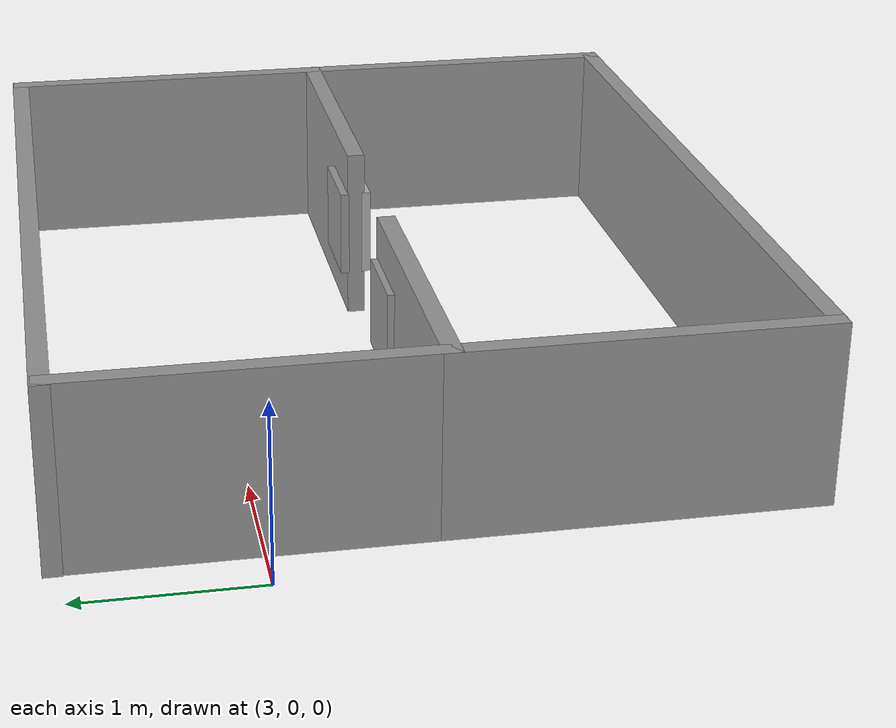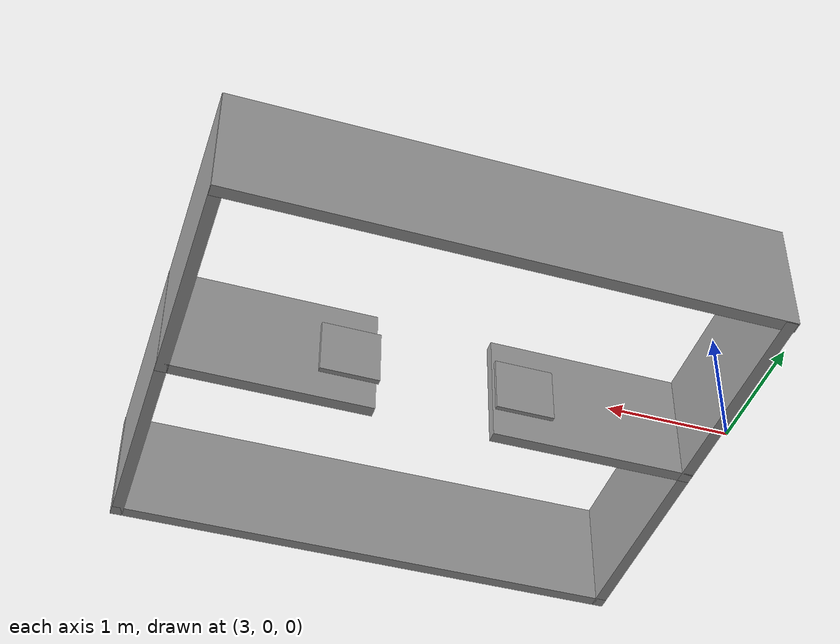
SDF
<?xml version='1.0'?>
<sdf version='1.7'>
  <model name='2_room'>
    <link name='link_0_clone_0'>
      <inertial>
        <mass>1</mass>
        <inertia>
          <ixx>0.166667</ixx>
          <ixy>0</ixy>
          <ixz>0</ixz>
          <iyy>0.166667</iyy>
          <iyz>0</iyz>
          <izz>0.166667</izz>
        </inertia>
        <pose>0 0 0 0 -0 0</pose>
      </inertial>
      <pose>2.941 -1.80696 0.726516 0 -0 0</pose>
      <gravity>1</gravity>
      <self_collide>0</self_collide>
      <kinematic>0</kinematic>
      <enable_wind>0</enable_wind>
      <visual name='visual'>
        <pose>0 0 0 0 -0 0</pose>
        <geometry>
          <box>
            <size>0.1 2 1</size>
          </box>
        </geometry>
        <material>
          <lighting>1</lighting>
          <script>
            <uri>file://media/materials/scripts/gazebo.material</uri>
            <name>Gazebo/Grey</name>
          </script>
          <shader type='pixel'>
            <normal_map>__default__</normal_map>
          </shader>
          <ambient>0.3 0.3 0.3 1</ambient>
          <diffuse>0.7 0.7 0.7 1</diffuse>
          <specular>0.01 0.01 0.01 1</specular>
          <emissive>0 0 0 1</emissive>
        </material>
        <transparency>0</transparency>
        <cast_shadows>1</cast_shadows>
      </visual>
      <collision name='collision'>
        <laser_retro>0</laser_retro>
        <max_contacts>10</max_contacts>
        <pose>0 0 0 0 -0 0</pose>
        <geometry>
          <box>
            <size>0.1 2 1</size>
          </box>
        </geometry>
        <surface>
          <friction>
            <ode>
              <mu>1</mu>
              <mu2>1</mu2>
              <fdir1>0 0 0</fdir1>
              <slip1>0</slip1>
              <slip2>0</slip2>
            </ode>
            <torsional>
              <coefficient>1</coefficient>
              <patch_radius>0</patch_radius>
              <surface_radius>0</surface_radius>
              <use_patch_radius>1</use_patch_radius>
              <ode>
                <slip>0</slip>
              </ode>
            </torsional>
          </friction>
          <bounce>
            <restitution_coefficient>0</restitution_coefficient>
            <threshold>1e+06</threshold>
          </bounce>
          <contact>
            <collide_without_contact>0</collide_without_contact>
            <collide_without_contact_bitmask>1</collide_without_contact_bitmask>
            <collide_bitmask>1</collide_bitmask>
            <ode>
              <soft_cfm>0</soft_cfm>
              <soft_erp>0.2</soft_erp>
              <kp>1e+13</kp>
              <kd>1</kd>
              <max_vel>0.01</max_vel>
              <min_depth>0</min_depth>
            </ode>
            <bullet>
              <split_impulse>1</split_impulse>
              <split_impulse_penetration_threshold>-0.01</split_impulse_penetration_threshold>
              <soft_cfm>0</soft_cfm>
              <soft_erp>0.2</soft_erp>
              <kp>1e+13</kp>
              <kd>1</kd>
            </bullet>
          </contact>
        </surface>
      </collision>
    </link>
    <link name='link_0'>
      <inertial>
        <mass>0.0165049</mass>
        <inertia>
          <ixx>0.00034729</ixx>
          <ixy>0</ixy>
          <ixz>0</ixz>
          <iyy>0.00068771</iyy>
          <iyz>0</iyz>
          <izz>0.00034729</izz>
        </inertia>
        <pose>0 0 0 0 -0 0</pose>
      </inertial>
      <pose>4.36868 -0.924977 0.741184 0 -0 0</pose>
      <gravity>1</gravity>
      <self_collide>0</self_collide>
      <kinematic>0</kinematic>
      <enable_wind>0</enable_wind>
      <visual name='visual'>
        <pose>0 0 0 0 -0 0</pose>
        <geometry>
          <box>
            <size>0.499999 0.05 0.5</size>
          </box>
        </geometry>
        <material>
          <lighting>1</lighting>
          <script>
            <uri>file://media/materials/scripts/gazebo.material</uri>
            <name>Gazebo/Grey</name>
          </script>
          <shader type='pixel'>
            <normal_map>__default__</normal_map>
          </shader>
          <ambient>0.3 0.3 0.3 1</ambient>
          <diffuse>0.7 0.7 0.7 1</diffuse>
          <specular>0.01 0.01 0.01 1</specular>
          <emissive>0 0 0 1</emissive>
        </material>
        <transparency>0</transparency>
        <cast_shadows>1</cast_shadows>
      </visual>
      <collision name='collision'>
        <laser_retro>0</laser_retro>
        <max_contacts>10</max_contacts>
        <pose>0 0 0 0 -0 0</pose>
        <geometry>
          <box>
            <size>0.499999 0.05 0.5</size>
          </box>
        </geometry>
        <surface>
          <friction>
            <ode>
              <mu>1</mu>
              <mu2>1</mu2>
              <fdir1>0 0 0</fdir1>
              <slip1>0</slip1>
              <slip2>0</slip2>
            </ode>
            <torsional>
              <coefficient>1</coefficient>
              <patch_radius>0</patch_radius>
              <surface_radius>0</surface_radius>
              <use_patch_radius>1</use_patch_radius>
              <ode>
                <slip>0</slip>
              </ode>
            </torsional>
          </friction>
          <bounce>
            <restitution_coefficient>0</restitution_coefficient>
            <threshold>1e+06</threshold>
          </bounce>
          <contact>
            <collide_without_contact>0</collide_without_contact>
            <collide_without_contact_bitmask>1</collide_without_contact_bitmask>
            <collide_bitmask>1</collide_bitmask>
            <ode>
              <soft_cfm>0</soft_cfm>
              <soft_erp>0.2</soft_erp>
              <kp>1e+13</kp>
              <kd>1</kd>
              <max_vel>0.01</max_vel>
              <min_depth>0</min_depth>
            </ode>
            <bullet>
              <split_impulse>1</split_impulse>
              <split_impulse_penetration_threshold>-0.01</split_impulse_penetration_threshold>
              <soft_cfm>0</soft_cfm>
              <soft_erp>0.2</soft_erp>
              <kp>1e+13</kp>
              <kd>1</kd>
            </bullet>
          </contact>
        </surface>
      </collision>
    </link>
    <link name='link_0_clone'>
      <inertial>
        <mass>0.0165049</mass>
        <inertia>
          <ixx>0.00034729</ixx>
          <ixy>0</ixy>
          <ixz>0</ixz>
          <iyy>0.00068771</iyy>
          <iyz>0</iyz>
          <izz>0.00034729</izz>
        </inertia>
        <pose>0 0 0 0 -0 0</pose>
      </inertial>
      <pose>5.87513 -0.91973 0.741184 0 -0 0</pose>
      <gravity>1</gravity>
      <self_collide>0</self_collide>
      <kinematic>0</kinematic>
      <enable_wind>0</enable_wind>
      <visual name='visual'>
        <pose>0 0 0 0 -0 0</pose>
        <geometry>
          <box>
            <size>0.499999 0.05 0.5</size>
          </box>
        </geometry>
        <material>
          <lighting>1</lighting>
          <script>
            <uri>model://2_room/materials/scripts</uri>
            <uri>model://2_room/materials/textures</uri>
            <name>tag16_05_1/Diffuse</name>
          </script>
          <shader type='pixel'>
            <normal_map>__default__</normal_map>
          </shader>
          <ambient>0.3 0.3 0.3 1</ambient>
          <diffuse>0.7 0.7 0.7 1</diffuse>
          <specular>0.01 0.01 0.01 1</specular>
          <emissive>0 0 0 1</emissive>
        </material>
        <transparency>0</transparency>
        <cast_shadows>1</cast_shadows>
      </visual>
      <collision name='collision'>
        <laser_retro>0</laser_retro>
        <max_contacts>10</max_contacts>
        <pose>0 0 0 0 -0 0</pose>
        <geometry>
          <box>
            <size>0.499999 0.05 0.5</size>
          </box>
        </geometry>
        <surface>
          <friction>
            <ode>
              <mu>1</mu>
              <mu2>1</mu2>
              <fdir1>0 0 0</fdir1>
              <slip1>0</slip1>
              <slip2>0</slip2>
            </ode>
            <torsional>
              <coefficient>1</coefficient>
              <patch_radius>0</patch_radius>
              <surface_radius>0</surface_radius>
              <use_patch_radius>1</use_patch_radius>
              <ode>
                <slip>0</slip>
              </ode>
            </torsional>
          </friction>
          <bounce>
            <restitution_coefficient>0</restitution_coefficient>
            <threshold>1e+06</threshold>
          </bounce>
          <contact>
            <collide_without_contact>0</collide_without_contact>
            <collide_without_contact_bitmask>1</collide_without_contact_bitmask>
            <collide_bitmask>1</collide_bitmask>
            <ode>
              <soft_cfm>0</soft_cfm>
              <soft_erp>0.2</soft_erp>
              <kp>1e+13</kp>
              <kd>1</kd>
              <max_vel>0.01</max_vel>
              <min_depth>0</min_depth>
            </ode>
            <bullet>
              <split_impulse>1</split_impulse>
              <split_impulse_penetration_threshold>-0.01</split_impulse_penetration_threshold>
              <soft_cfm>0</soft_cfm>
              <soft_erp>0.2</soft_erp>
              <kp>1e+13</kp>
              <kd>1</kd>
            </bullet>
          </contact>
        </surface>
      </collision>
    </link>
    <link name='link_0_clone_0_clone'>
      <inertial>
        <mass>1</mass>
        <inertia>
          <ixx>0.166667</ixx>
          <ixy>0</ixy>
          <ixz>0</ixz>
          <iyy>0.166667</iyy>
          <iyz>0</iyz>
          <izz>0.166667</izz>
        </inertia>
        <pose>0 0 0 0 -0 0</pose>
      </inertial>
      <pose>2.94115 0.091646 0.726516 0 -0 0</pose>
      <gravity>1</gravity>
      <self_collide>0</self_collide>
      <kinematic>0</kinematic>
      <enable_wind>0</enable_wind>
      <visual name='visual'>
        <pose>0 0 0 0 -0 0</pose>
        <geometry>
          <box>
            <size>0.1 2 1</size>
          </box>
        </geometry>
        <material>
          <lighting>1</lighting>
          <script>
            <uri>file://media/materials/scripts/gazebo.material</uri>
            <name>Gazebo/Grey</name>
          </script>
          <shader type='pixel'>
            <normal_map>__default__</normal_map>
          </shader>
          <ambient>0.3 0.3 0.3 1</ambient>
          <diffuse>0.7 0.7 0.7 1</diffuse>
          <specular>0.01 0.01 0.01 1</specular>
          <emissive>0 0 0 1</emissive>
        </material>
        <transparency>0</transparency>
        <cast_shadows>1</cast_shadows>
      </visual>
      <collision name='collision'>
        <laser_retro>0</laser_retro>
        <max_contacts>10</max_contacts>
        <pose>0 0 0 0 -0 0</pose>
        <geometry>
          <box>
            <size>0.1 2 1</size>
          </box>
        </geometry>
        <surface>
          <friction>
            <ode>
              <mu>1</mu>
              <mu2>1</mu2>
              <fdir1>0 0 0</fdir1>
              <slip1>0</slip1>
              <slip2>0</slip2>
            </ode>
            <torsional>
              <coefficient>1</coefficient>
              <patch_radius>0</patch_radius>
              <surface_radius>0</surface_radius>
              <use_patch_radius>1</use_patch_radius>
              <ode>
                <slip>0</slip>
              </ode>
            </torsional>
          </friction>
          <bounce>
            <restitution_coefficient>0</restitution_coefficient>
            <threshold>1e+06</threshold>
          </bounce>
          <contact>
            <collide_without_contact>0</collide_without_contact>
            <collide_without_contact_bitmask>1</collide_without_contact_bitmask>
            <collide_bitmask>1</collide_bitmask>
            <ode>
              <soft_cfm>0</soft_cfm>
              <soft_erp>0.2</soft_erp>
              <kp>1e+13</kp>
              <kd>1</kd>
              <max_vel>0.01</max_vel>
              <min_depth>0</min_depth>
            </ode>
            <bullet>
              <split_impulse>1</split_impulse>
              <split_impulse_penetration_threshold>-0.01</split_impulse_penetration_threshold>
              <soft_cfm>0</soft_cfm>
              <soft_erp>0.2</soft_erp>
              <kp>1e+13</kp>
              <kd>1</kd>
            </bullet>
          </contact>
        </surface>
      </collision>
    </link>
    <link name='link_0_clone_0_clone_1_clone'>
      <inertial>
        <mass>1</mass>
        <inertia>
          <ixx>0.166667</ixx>
          <ixy>0</ixy>
          <ixz>0</ixz>
          <iyy>0.166667</iyy>
          <iyz>0</iyz>
          <izz>0.166667</izz>
        </inertia>
        <pose>0 0 0 0 -0 0</pose>
      </inertial>
      <pose>3.76893 -0.857187 0.726516 0 0 -1.5708</pose>
      <gravity>1</gravity>
      <self_collide>0</self_collide>
      <kinematic>0</kinematic>
      <enable_wind>0</enable_wind>
      <visual name='visual'>
        <pose>0 0 0 0 -0 0</pose>
        <geometry>
          <box>
            <size>0.1 1.75 1</size>
          </box>
        </geometry>
        <material>
          <lighting>1</lighting>
          <script>
            <uri>file://media/materials/scripts/gazebo.material</uri>
            <name>Gazebo/Grey</name>
          </script>
          <shader type='pixel'>
            <normal_map>__default__</normal_map>
          </shader>
          <ambient>0.3 0.3 0.3 1</ambient>
          <diffuse>0.7 0.7 0.7 1</diffuse>
          <specular>0.01 0.01 0.01 1</specular>
          <emissive>0 0 0 1</emissive>
        </material>
        <transparency>0</transparency>
        <cast_shadows>1</cast_shadows>
      </visual>
      <collision name='collision'>
        <laser_retro>0</laser_retro>
        <max_contacts>10</max_contacts>
        <pose>0 0 0 0 -0 0</pose>
        <geometry>
          <box>
            <size>0.1 1.75 1</size>
          </box>
        </geometry>
        <surface>
          <friction>
            <ode>
              <mu>1</mu>
              <mu2>1</mu2>
              <fdir1>0 0 0</fdir1>
              <slip1>0</slip1>
              <slip2>0</slip2>
            </ode>
            <torsional>
              <coefficient>1</coefficient>
              <patch_radius>0</patch_radius>
              <surface_radius>0</surface_radius>
              <use_patch_radius>1</use_patch_radius>
              <ode>
                <slip>0</slip>
              </ode>
            </torsional>
          </friction>
          <bounce>
            <restitution_coefficient>0</restitution_coefficient>
            <threshold>1e+06</threshold>
          </bounce>
          <contact>
            <collide_without_contact>0</collide_without_contact>
            <collide_without_contact_bitmask>1</collide_without_contact_bitmask>
            <collide_bitmask>1</collide_bitmask>
            <ode>
              <soft_cfm>0</soft_cfm>
              <soft_erp>0.2</soft_erp>
              <kp>1e+13</kp>
              <kd>1</kd>
              <max_vel>0.01</max_vel>
              <min_depth>0</min_depth>
            </ode>
            <bullet>
              <split_impulse>1</split_impulse>
              <split_impulse_penetration_threshold>-0.01</split_impulse_penetration_threshold>
              <soft_cfm>0</soft_cfm>
              <soft_erp>0.2</soft_erp>
              <kp>1e+13</kp>
              <kd>1</kd>
            </bullet>
          </contact>
        </surface>
      </collision>
    </link>
    <link name='link_0_clone_0_clone_1_clone_clone'>
      <inertial>
        <mass>1</mass>
        <inertia>
          <ixx>0.166667</ixx>
          <ixy>0</ixy>
          <ixz>0</ixz>
          <iyy>0.166667</iyy>
          <iyz>0</iyz>
          <izz>0.166667</izz>
        </inertia>
        <pose>0 0 0 0 -0 0</pose>
      </inertial>
      <pose>5.14109 -2.75738 0.726516 0 0 -1.5708</pose>
      <gravity>1</gravity>
      <self_collide>0</self_collide>
      <kinematic>0</kinematic>
      <enable_wind>0</enable_wind>
      <visual name='visual'>
        <pose>0 0 0 0 -0 0</pose>
        <geometry>
          <box>
            <size>0.1 4.5 1</size>
          </box>
        </geometry>
        <material>
          <lighting>1</lighting>
          <script>
            <uri>file://media/materials/scripts/gazebo.material</uri>
            <name>Gazebo/Grey</name>
          </script>
          <shader type='pixel'>
            <normal_map>__default__</normal_map>
          </shader>
          <ambient>0.3 0.3 0.3 1</ambient>
          <diffuse>0.7 0.7 0.7 1</diffuse>
          <specular>0.01 0.01 0.01 1</specular>
          <emissive>0 0 0 1</emissive>
        </material>
        <transparency>0</transparency>
        <cast_shadows>1</cast_shadows>
      </visual>
      <collision name='collision'>
        <laser_retro>0</laser_retro>
        <max_contacts>10</max_contacts>
        <pose>0 0 0 0 -0 0</pose>
        <geometry>
          <box>
            <size>0.1 4.5 1</size>
          </box>
        </geometry>
        <surface>
          <friction>
            <ode>
              <mu>1</mu>
              <mu2>1</mu2>
              <fdir1>0 0 0</fdir1>
              <slip1>0</slip1>
              <slip2>0</slip2>
            </ode>
            <torsional>
              <coefficient>1</coefficient>
              <patch_radius>0</patch_radius>
              <surface_radius>0</surface_radius>
              <use_patch_radius>1</use_patch_radius>
              <ode>
                <slip>0</slip>
              </ode>
            </torsional>
          </friction>
          <bounce>
            <restitution_coefficient>0</restitution_coefficient>
            <threshold>1e+06</threshold>
          </bounce>
          <contact>
            <collide_without_contact>0</collide_without_contact>
            <collide_without_contact_bitmask>1</collide_without_contact_bitmask>
            <collide_bitmask>1</collide_bitmask>
            <ode>
              <soft_cfm>0</soft_cfm>
              <soft_erp>0.2</soft_erp>
              <kp>1e+13</kp>
              <kd>1</kd>
              <max_vel>0.01</max_vel>
              <min_depth>0</min_depth>
            </ode>
            <bullet>
              <split_impulse>1</split_impulse>
              <split_impulse_penetration_threshold>-0.01</split_impulse_penetration_threshold>
              <soft_cfm>0</soft_cfm>
              <soft_erp>0.2</soft_erp>
              <kp>1e+13</kp>
              <kd>1</kd>
            </bullet>
          </contact>
        </surface>
      </collision>
    </link>
    <link name='link_0_clone_0_clone_1_clone_clone_clone'>
      <inertial>
        <mass>1</mass>
        <inertia>
          <ixx>0.166667</ixx>
          <ixy>0</ixy>
          <ixz>0</ixz>
          <iyy>0.166667</iyy>
          <iyz>0</iyz>
          <izz>0.166667</izz>
        </inertia>
        <pose>0 0 0 0 -0 0</pose>
      </inertial>
      <pose>5.13286 1.04959 0.726516 0 0 -1.5708</pose>
      <gravity>1</gravity>
      <self_collide>0</self_collide>
      <kinematic>0</kinematic>
      <enable_wind>0</enable_wind>
      <visual name='visual'>
        <pose>0 0 0 0 -0 0</pose>
        <geometry>
          <box>
            <size>0.1 4.5 1</size>
          </box>
        </geometry>
        <material>
          <lighting>1</lighting>
          <script>
            <uri>file://media/materials/scripts/gazebo.material</uri>
            <name>Gazebo/Grey</name>
          </script>
          <shader type='pixel'>
            <normal_map>__default__</normal_map>
          </shader>
          <ambient>0.3 0.3 0.3 1</ambient>
          <diffuse>0.7 0.7 0.7 1</diffuse>
          <specular>0.01 0.01 0.01 1</specular>
          <emissive>0 0 0 1</emissive>
        </material>
        <transparency>0</transparency>
        <cast_shadows>1</cast_shadows>
      </visual>
      <collision name='collision'>
        <laser_retro>0</laser_retro>
        <max_contacts>10</max_contacts>
        <pose>0 0 0 0 -0 0</pose>
        <geometry>
          <box>
            <size>0.1 4.5 1</size>
          </box>
        </geometry>
        <surface>
          <friction>
            <ode>
              <mu>1</mu>
              <mu2>1</mu2>
              <fdir1>0 0 0</fdir1>
              <slip1>0</slip1>
              <slip2>0</slip2>
            </ode>
            <torsional>
              <coefficient>1</coefficient>
              <patch_radius>0</patch_radius>
              <surface_radius>0</surface_radius>
              <use_patch_radius>1</use_patch_radius>
              <ode>
                <slip>0</slip>
              </ode>
            </torsional>
          </friction>
          <bounce>
            <restitution_coefficient>0</restitution_coefficient>
            <threshold>1e+06</threshold>
          </bounce>
          <contact>
            <collide_without_contact>0</collide_without_contact>
            <collide_without_contact_bitmask>1</collide_without_contact_bitmask>
            <collide_bitmask>1</collide_bitmask>
            <ode>
              <soft_cfm>0</soft_cfm>
              <soft_erp>0.2</soft_erp>
              <kp>1e+13</kp>
              <kd>1</kd>
              <max_vel>0.01</max_vel>
              <min_depth>0</min_depth>
            </ode>
            <bullet>
              <split_impulse>1</split_impulse>
              <split_impulse_penetration_threshold>-0.01</split_impulse_penetration_threshold>
              <soft_cfm>0</soft_cfm>
              <soft_erp>0.2</soft_erp>
              <kp>1e+13</kp>
              <kd>1</kd>
            </bullet>
          </contact>
        </surface>
      </collision>
    </link>
    <link name='link_0_clone_0_clone_clone'>
      <inertial>
        <mass>1</mass>
        <inertia>
          <ixx>0.166667</ixx>
          <ixy>0</ixy>
          <ixz>0</ixz>
          <iyy>0.166667</iyy>
          <iyz>0</iyz>
          <izz>0.166667</izz>
        </inertia>
        <pose>0 0 0 0 -0 0</pose>
      </inertial>
      <pose>7.33895 -1.80838 0.726516 0 -0 0</pose>
      <gravity>1</gravity>
      <self_collide>0</self_collide>
      <kinematic>0</kinematic>
      <enable_wind>0</enable_wind>
      <visual name='visual'>
        <pose>0 0 0 0 -0 0</pose>
        <geometry>
          <box>
            <size>0.1 2 1</size>
          </box>
        </geometry>
        <material>
          <lighting>1</lighting>
          <script>
            <uri>file://media/materials/scripts/gazebo.material</uri>
            <name>Gazebo/Grey</name>
          </script>
          <shader type='pixel'>
            <normal_map>__default__</normal_map>
          </shader>
          <ambient>0.3 0.3 0.3 1</ambient>
          <diffuse>0.7 0.7 0.7 1</diffuse>
          <specular>0.01 0.01 0.01 1</specular>
          <emissive>0 0 0 1</emissive>
        </material>
        <transparency>0</transparency>
        <cast_shadows>1</cast_shadows>
      </visual>
      <collision name='collision'>
        <laser_retro>0</laser_retro>
        <max_contacts>10</max_contacts>
        <pose>0 0 0 0 -0 0</pose>
        <geometry>
          <box>
            <size>0.1 2 1</size>
          </box>
        </geometry>
        <surface>
          <friction>
            <ode>
              <mu>1</mu>
              <mu2>1</mu2>
              <fdir1>0 0 0</fdir1>
              <slip1>0</slip1>
              <slip2>0</slip2>
            </ode>
            <torsional>
              <coefficient>1</coefficient>
              <patch_radius>0</patch_radius>
              <surface_radius>0</surface_radius>
              <use_patch_radius>1</use_patch_radius>
              <ode>
                <slip>0</slip>
              </ode>
            </torsional>
          </friction>
          <bounce>
            <restitution_coefficient>0</restitution_coefficient>
            <threshold>1e+06</threshold>
          </bounce>
          <contact>
            <collide_without_contact>0</collide_without_contact>
            <collide_without_contact_bitmask>1</collide_without_contact_bitmask>
            <collide_bitmask>1</collide_bitmask>
            <ode>
              <soft_cfm>0</soft_cfm>
              <soft_erp>0.2</soft_erp>
              <kp>1e+13</kp>
              <kd>1</kd>
              <max_vel>0.01</max_vel>
              <min_depth>0</min_depth>
            </ode>
            <bullet>
              <split_impulse>1</split_impulse>
              <split_impulse_penetration_threshold>-0.01</split_impulse_penetration_threshold>
              <soft_cfm>0</soft_cfm>
              <soft_erp>0.2</soft_erp>
              <kp>1e+13</kp>
              <kd>1</kd>
            </bullet>
          </contact>
        </surface>
      </collision>
    </link>
    <link name='link_0_clone_0_clone_clone_clone'>
      <inertial>
        <mass>1</mass>
        <inertia>
          <ixx>0.166667</ixx>
          <ixy>0</ixy>
          <ixz>0</ixz>
          <iyy>0.166667</iyy>
          <iyz>0</iyz>
          <izz>0.166667</izz>
        </inertia>
        <pose>0 0 0 0 -0 0</pose>
      </inertial>
      <pose>7.33662 0.093628 0.726516 0 -0 0</pose>
      <gravity>1</gravity>
      <self_collide>0</self_collide>
      <kinematic>0</kinematic>
      <enable_wind>0</enable_wind>
      <visual name='visual'>
        <pose>0 0 0 0 -0 0</pose>
        <geometry>
          <box>
            <size>0.1 2 1</size>
          </box>
        </geometry>
        <material>
          <lighting>1</lighting>
          <script>
            <uri>file://media/materials/scripts/gazebo.material</uri>
            <name>Gazebo/Grey</name>
          </script>
          <shader type='pixel'>
            <normal_map>__default__</normal_map>
          </shader>
          <ambient>0.3 0.3 0.3 1</ambient>
          <diffuse>0.7 0.7 0.7 1</diffuse>
          <specular>0.01 0.01 0.01 1</specular>
          <emissive>0 0 0 1</emissive>
        </material>
        <transparency>0</transparency>
        <cast_shadows>1</cast_shadows>
      </visual>
      <collision name='collision'>
        <laser_retro>0</laser_retro>
        <max_contacts>10</max_contacts>
        <pose>0 0 0 0 -0 0</pose>
        <geometry>
          <box>
            <size>0.1 2 1</size>
          </box>
        </geometry>
        <surface>
          <friction>
            <ode>
              <mu>1</mu>
              <mu2>1</mu2>
              <fdir1>0 0 0</fdir1>
              <slip1>0</slip1>
              <slip2>0</slip2>
            </ode>
            <torsional>
              <coefficient>1</coefficient>
              <patch_radius>0</patch_radius>
              <surface_radius>0</surface_radius>
              <use_patch_radius>1</use_patch_radius>
              <ode>
                <slip>0</slip>
              </ode>
            </torsional>
          </friction>
          <bounce>
            <restitution_coefficient>0</restitution_coefficient>
            <threshold>1e+06</threshold>
          </bounce>
          <contact>
            <collide_without_contact>0</collide_without_contact>
            <collide_without_contact_bitmask>1</collide_without_contact_bitmask>
            <collide_bitmask>1</collide_bitmask>
            <ode>
              <soft_cfm>0</soft_cfm>
              <soft_erp>0.2</soft_erp>
              <kp>1e+13</kp>
              <kd>1</kd>
              <max_vel>0.01</max_vel>
              <min_depth>0</min_depth>
            </ode>
            <bullet>
              <split_impulse>1</split_impulse>
              <split_impulse_penetration_threshold>-0.01</split_impulse_penetration_threshold>
              <soft_cfm>0</soft_cfm>
              <soft_erp>0.2</soft_erp>
              <kp>1e+13</kp>
              <kd>1</kd>
            </bullet>
          </contact>
        </surface>
      </collision>
    </link>
    <link name='link_0_clone_0_clone_clone_clone_0'>
      <inertial>
        <mass>1</mass>
        <inertia>
          <ixx>0.166667</ixx>
          <ixy>0</ixy>
          <ixz>0</ixz>
          <iyy>0.166667</iyy>
          <iyz>0</iyz>
          <izz>0.166667</izz>
        </inertia>
        <pose>0 0 0 0 -0 0</pose>
      </inertial>
      <pose>6.50976 -0.859788 0.726516 0 0 -1.5708</pose>
      <gravity>1</gravity>
      <self_collide>0</self_collide>
      <kinematic>0</kinematic>
      <enable_wind>0</enable_wind>
      <visual name='visual'>
        <pose>0 0 0 0 -0 0</pose>
        <geometry>
          <box>
            <size>0.1 1.75 1</size>
          </box>
        </geometry>
        <material>
          <lighting>1</lighting>
          <script>
            <uri>file://media/materials/scripts/gazebo.material</uri>
            <name>Gazebo/Grey</name>
          </script>
          <shader type='pixel'>
            <normal_map>__default__</normal_map>
          </shader>
          <ambient>0.3 0.3 0.3 1</ambient>
          <diffuse>0.7 0.7 0.7 1</diffuse>
          <specular>0.01 0.01 0.01 1</specular>
          <emissive>0 0 0 1</emissive>
        </material>
        <transparency>0</transparency>
        <cast_shadows>1</cast_shadows>
      </visual>
      <collision name='collision'>
        <laser_retro>0</laser_retro>
        <max_contacts>10</max_contacts>
        <pose>0 0 0 0 -0 0</pose>
        <geometry>
          <box>
            <size>0.1 1.75 1</size>
          </box>
        </geometry>
        <surface>
          <friction>
            <ode>
              <mu>1</mu>
              <mu2>1</mu2>
              <fdir1>0 0 0</fdir1>
              <slip1>0</slip1>
              <slip2>0</slip2>
            </ode>
            <torsional>
              <coefficient>1</coefficient>
              <patch_radius>0</patch_radius>
              <surface_radius>0</surface_radius>
              <use_patch_radius>1</use_patch_radius>
              <ode>
                <slip>0</slip>
              </ode>
            </torsional>
          </friction>
          <bounce>
            <restitution_coefficient>0</restitution_coefficient>
            <threshold>1e+06</threshold>
          </bounce>
          <contact>
            <collide_without_contact>0</collide_without_contact>
            <collide_without_contact_bitmask>1</collide_without_contact_bitmask>
            <collide_bitmask>1</collide_bitmask>
            <ode>
              <soft_cfm>0</soft_cfm>
              <soft_erp>0.2</soft_erp>
              <kp>1e+13</kp>
              <kd>1</kd>
              <max_vel>0.01</max_vel>
              <min_depth>0</min_depth>
            </ode>
            <bullet>
              <split_impulse>1</split_impulse>
              <split_impulse_penetration_threshold>-0.01</split_impulse_penetration_threshold>
              <soft_cfm>0</soft_cfm>
              <soft_erp>0.2</soft_erp>
              <kp>1e+13</kp>
              <kd>1</kd>
            </bullet>
          </contact>
        </surface>
      </collision>
    </link>
    <link name='link_0_clone_1'>
      <inertial>
        <mass>0.0165049</mass>
        <inertia>
          <ixx>0.00034729</ixx>
          <ixy>0</ixy>
          <ixz>0</ixz>
          <iyy>0.00068771</iyy>
          <iyz>0</iyz>
          <izz>0.00034729</izz>
        </inertia>
        <pose>0 0 0 0 -0 0</pose>
      </inertial>
      <pose>5.86373 -0.790889 0.741184 0 -0 0</pose>
      <gravity>1</gravity>
      <self_collide>0</self_collide>
      <kinematic>0</kinematic>
      <enable_wind>0</enable_wind>
      <visual name='visual'>
        <pose>0 0 0 0 -0 0</pose>
        <geometry>
          <box>
            <size>0.499999 0.05 0.5</size>
          </box>
        </geometry>
        <material>
          <lighting>1</lighting>
          <script>
            <uri>file://media/materials/scripts/gazebo.material</uri>
            <name>Gazebo/Grey</name>
          </script>
          <shader type='pixel'>
            <normal_map>__default__</normal_map>
          </shader>
          <ambient>0.3 0.3 0.3 1</ambient>
          <diffuse>0.7 0.7 0.7 1</diffuse>
          <specular>0.01 0.01 0.01 1</specular>
          <emissive>0 0 0 1</emissive>
        </material>
        <transparency>0</transparency>
        <cast_shadows>1</cast_shadows>
      </visual>
      <collision name='collision'>
        <laser_retro>0</laser_retro>
        <max_contacts>10</max_contacts>
        <pose>0 0 0 0 -0 0</pose>
        <geometry>
          <box>
            <size>0.499999 0.05 0.5</size>
          </box>
        </geometry>
        <surface>
          <friction>
            <ode>
              <mu>1</mu>
              <mu2>1</mu2>
              <fdir1>0 0 0</fdir1>
              <slip1>0</slip1>
              <slip2>0</slip2>
            </ode>
            <torsional>
              <coefficient>1</coefficient>
              <patch_radius>0</patch_radius>
              <surface_radius>0</surface_radius>
              <use_patch_radius>1</use_patch_radius>
              <ode>
                <slip>0</slip>
              </ode>
            </torsional>
          </friction>
          <bounce>
            <restitution_coefficient>0</restitution_coefficient>
            <threshold>1e+06</threshold>
          </bounce>
          <contact>
            <collide_without_contact>0</collide_without_contact>
            <collide_without_contact_bitmask>1</collide_without_contact_bitmask>
            <collide_bitmask>1</collide_bitmask>
            <ode>
              <soft_cfm>0</soft_cfm>
              <soft_erp>0.2</soft_erp>
              <kp>1e+13</kp>
              <kd>1</kd>
              <max_vel>0.01</max_vel>
              <min_depth>0</min_depth>
            </ode>
            <bullet>
              <split_impulse>1</split_impulse>
              <split_impulse_penetration_threshold>-0.01</split_impulse_penetration_threshold>
              <soft_cfm>0</soft_cfm>
              <soft_erp>0.2</soft_erp>
              <kp>1e+13</kp>
              <kd>1</kd>
            </bullet>
          </contact>
        </surface>
      </collision>
    </link>
    <link name='link_0_clone_2'>
      <inertial>
        <mass>0.0165049</mass>
        <inertia>
          <ixx>0.00034729</ixx>
          <ixy>0</ixy>
          <ixz>0</ixz>
          <iyy>0.00068771</iyy>
          <iyz>0</iyz>
          <izz>0.00034729</izz>
        </inertia>
        <pose>0 0 0 0 -0 0</pose>
      </inertial>
      <pose>4.37201 -0.794616 0.741184 0 -0 0</pose>
      <gravity>1</gravity>
      <self_collide>0</self_collide>
      <kinematic>0</kinematic>
      <enable_wind>0</enable_wind>
      <visual name='visual'>
        <pose>0 0 0 0 -0 0</pose>
        <geometry>
          <box>
            <size>0.499999 0.05 0.5</size>
          </box>
        </geometry>
        <material>
          <lighting>1</lighting>
          <script>
            <uri>file://media/materials/scripts/gazebo.material</uri>
            <name>Gazebo/Grey</name>
          </script>
          <shader type='pixel'>
            <normal_map>__default__</normal_map>
          </shader>
          <ambient>0.3 0.3 0.3 1</ambient>
          <diffuse>0.7 0.7 0.7 1</diffuse>
          <specular>0.01 0.01 0.01 1</specular>
          <emissive>0 0 0 1</emissive>
        </material>
        <transparency>0</transparency>
        <cast_shadows>1</cast_shadows>
      </visual>
      <collision name='collision'>
        <laser_retro>0</laser_retro>
        <max_contacts>10</max_contacts>
        <pose>0 0 0 0 -0 0</pose>
        <geometry>
          <box>
            <size>0.499999 0.05 0.5</size>
          </box>
        </geometry>
        <surface>
          <friction>
            <ode>
              <mu>1</mu>
              <mu2>1</mu2>
              <fdir1>0 0 0</fdir1>
              <slip1>0</slip1>
              <slip2>0</slip2>
            </ode>
            <torsional>
              <coefficient>1</coefficient>
              <patch_radius>0</patch_radius>
              <surface_radius>0</surface_radius>
              <use_patch_radius>1</use_patch_radius>
              <ode>
                <slip>0</slip>
              </ode>
            </torsional>
          </friction>
          <bounce>
            <restitution_coefficient>0</restitution_coefficient>
            <threshold>1e+06</threshold>
          </bounce>
          <contact>
            <collide_without_contact>0</collide_without_contact>
            <collide_without_contact_bitmask>1</collide_without_contact_bitmask>
            <collide_bitmask>1</collide_bitmask>
            <ode>
              <soft_cfm>0</soft_cfm>
              <soft_erp>0.2</soft_erp>
              <kp>1e+13</kp>
              <kd>1</kd>
              <max_vel>0.01</max_vel>
              <min_depth>0</min_depth>
            </ode>
            <bullet>
              <split_impulse>1</split_impulse>
              <split_impulse_penetration_threshold>-0.01</split_impulse_penetration_threshold>
              <soft_cfm>0</soft_cfm>
              <soft_erp>0.2</soft_erp>
              <kp>1e+13</kp>
              <kd>1</kd>
            </bullet>
          </contact>
        </surface>
      </collision>
    </link>
    <joint name='link_0_JOINT_1' type='fixed'>
      <parent>link_0</parent>
      <child>link_0_clone_0_clone_1_clone</child>
      <pose>0 0 0 0 -0 0</pose>
      <physics>
        <ode>
          <limit>
            <cfm>0</cfm>
            <erp>0.2</erp>
          </limit>
          <suspension>
            <cfm>0</cfm>
            <erp>0.2</erp>
          </suspension>
        </ode>
      </physics>
    </joint>
    <joint name='link_0_clone_0_JOINT_0' type='fixed'>
      <parent>link_0_clone_0</parent>
      <child>link_0_clone_0_clone_1_clone</child>
      <pose>0 0 0 0 -0 0</pose>
      <physics>
        <ode>
          <limit>
            <cfm>0</cfm>
            <erp>0.2</erp>
          </limit>
          <suspension>
            <cfm>0</cfm>
            <erp>0.2</erp>
          </suspension>
        </ode>
      </physics>
    </joint>
    <joint name='link_0_clone_0_JOINT_1' type='fixed'>
      <parent>link_0_clone_0</parent>
      <child>link_0_clone_0_clone_1_clone</child>
      <pose>0 0 0 0 -0 0</pose>
      <physics>
        <ode>
          <limit>
            <cfm>0</cfm>
            <erp>0.2</erp>
          </limit>
          <suspension>
            <cfm>0</cfm>
            <erp>0.2</erp>
          </suspension>
        </ode>
      </physics>
    </joint>
    <joint name='link_0_clone_0_clone_1_clone_JOINT_2' type='fixed'>
      <parent>link_0_clone_0_clone_1_clone</parent>
      <child>link_0_clone_0_clone</child>
      <pose>0 0 0 0 -0 0</pose>
      <physics>
        <ode>
          <limit>
            <cfm>0</cfm>
            <erp>0.2</erp>
          </limit>
          <suspension>
            <cfm>0</cfm>
            <erp>0.2</erp>
          </suspension>
        </ode>
      </physics>
    </joint>
    <joint name='link_0_clone_1_JOINT_3' type='fixed'>
      <parent>link_0_clone_1</parent>
      <child>link_0_clone_0_clone_clone_clone_0</child>
      <pose>0 0 0 0 -0 0</pose>
      <physics>
        <ode>
          <limit>
            <cfm>0</cfm>
            <erp>0.2</erp>
          </limit>
          <suspension>
            <cfm>0</cfm>
            <erp>0.2</erp>
          </suspension>
        </ode>
      </physics>
    </joint>
    <joint name='link_0_clone_2_JOINT_0' type='fixed'>
      <parent>link_0_clone_2</parent>
      <child>link_0_clone_0_clone_1_clone</child>
      <pose>0 0 0 0 -0 0</pose>
      <physics>
        <ode>
          <limit>
            <cfm>0</cfm>
            <erp>0.2</erp>
          </limit>
          <suspension>
            <cfm>0</cfm>
            <erp>0.2</erp>
          </suspension>
        </ode>
      </physics>
    </joint>
    <joint name='link_0_clone_JOINT_2' type='fixed'>
      <parent>link_0_clone</parent>
      <child>link_0_clone_0_clone_clone_clone_0</child>
      <pose>0 0 0 0 -0 0</pose>
      <physics>
        <ode>
          <limit>
            <cfm>0</cfm>
            <erp>0.2</erp>
          </limit>
          <suspension>
            <cfm>0</cfm>
            <erp>0.2</erp>
          </suspension>
        </ode>
      </physics>
    </joint>
    <static>1</static>
    <allow_auto_disable>1</allow_auto_disable>
  </model>
</sdf>
